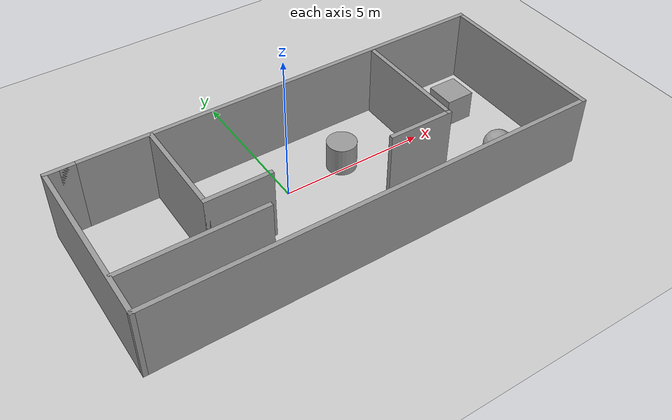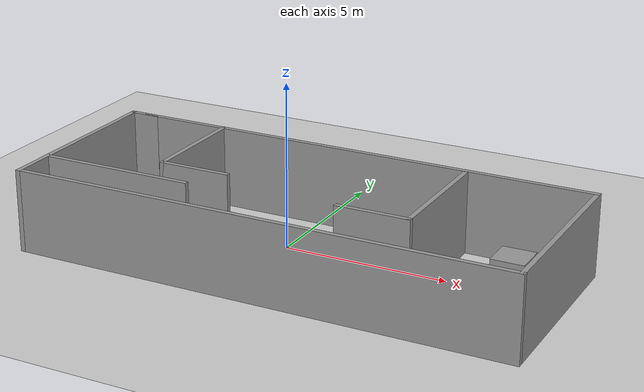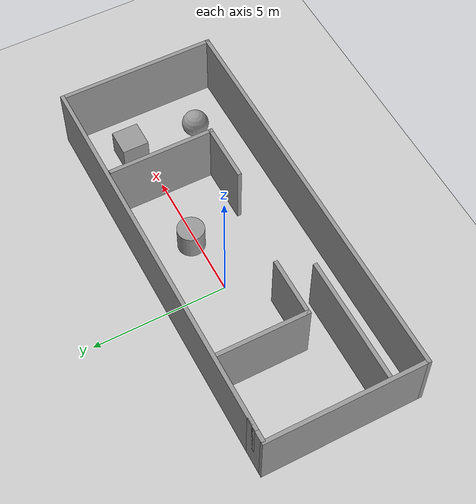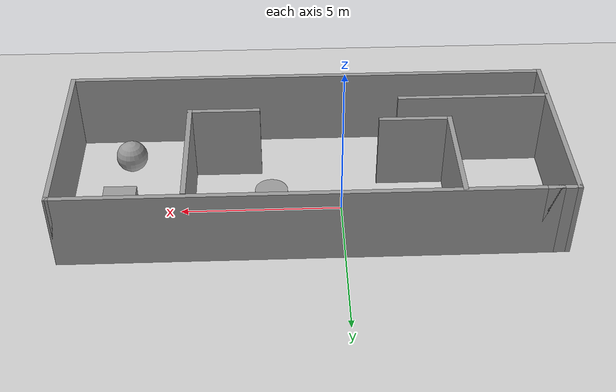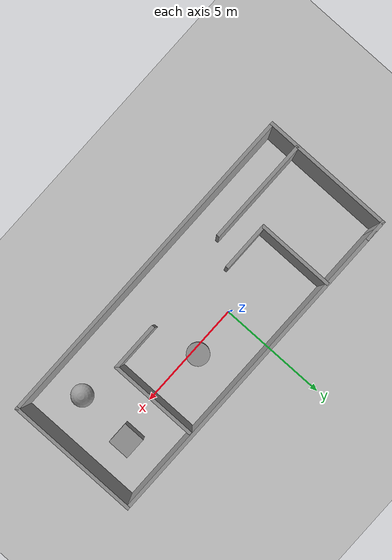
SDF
<sdf version="1.7">
 <world name="default">
  <light name="sun" type="directional">
   <pose>0 0 10 0 -0 0</pose>
   <diffuse>0.8 0.8 0.8 1</diffuse>
   <specular>0.2 0.2 0.2 1</specular>
   <attenuation>
    <range>1000</range>
    <constant>0.9</constant>
    <linear>0.01</linear>
    <quadratic>0.001</quadratic>
   </attenuation>
   <direction>-0.5 0.1 -0.9</direction>
   <spot><inner_angle>0</inner_angle><outer_angle>0</outer_angle><falloff>0</falloff></spot>
  </light>
  <model name="ground_plane">
   <static>1</static>
   <link name="link">
    <collision name="collision">
     <geometry><plane><normal>0 0 1</normal><size>100 100</size></plane></geometry>
     <surface>
      <contact><collide_bitmask>65535</collide_bitmask></contact>
      <friction><ode><mu>100</mu><mu2>50</mu2></ode></friction>
     </surface>
    </collision>
    <visual name="visual">
     <cast_shadows>0</cast_shadows>
     <geometry><plane><normal>0 0 1</normal><size>100 100</size></plane></geometry>
     <material>
      <script><uri>file://media/materials/scripts/gazebo.material</uri><name>Gazebo/Grey</name></script>
     </material>
    </visual>
   </link>
  </model>
  <gravity>0 0 -9.8</gravity>
  <magnetic_field>6e-06 2.3e-05 -4.2e-05</magnetic_field>
  <atmosphere type="adiabatic"/>
  <physics type="ode">
   <max_step_size>0.001</max_step_size>
   <real_time_factor>1</real_time_factor>
   <real_time_update_rate>1000</real_time_update_rate>
  </physics>
  <scene><ambient>0.4 0.4 0.4 1</ambient><background>0.7 0.7 0.7 1</background><shadows>1</shadows></scene>
  <audio><device>default</device></audio>
  <spherical_coordinates>
   <surface_model>EARTH_WGS84</surface_model>
   <latitude_deg>0</latitude_deg>
   <longitude_deg>0</longitude_deg>
   <elevation>0</elevation>
   <heading_deg>0</heading_deg>
  </spherical_coordinates>
  <model name="room">
   <pose>0.929309 1.99973 0 0 -0 0</pose>
   <link name="Wall_22">
    <collision name="Wall_22_Collision">
     <geometry><box><size>14.75 0.15 2.5</size></box></geometry>
     <pose>0 0 1.25 0 -0 0</pose>
    </collision>
    <visual name="Wall_22_Visual">
     <pose>0 0 1.25 0 -0 0</pose>
     <geometry><box><size>14.75 0.15 2.5</size></box></geometry>
     <material>
      <script><uri>file://media/materials/scripts/gazebo.material</uri><name>Gazebo/Grey</name></script>
      <ambient>1 1 1 1</ambient>
     </material>
     <meta><layer>0</layer></meta>
    </visual>
    <pose>0.25 0.1475 0 0 -0 0</pose>
   </link>
   <link name="Wall_23">
    <collision name="Wall_23_Collision">
     <geometry><box><size>6 0.15 2.5</size></box></geometry>
     <pose>0 0 1.25 0 -0 0</pose>
    </collision>
    <visual name="Wall_23_Visual">
     <pose>0 0 1.25 0 -0 0</pose>
     <geometry><box><size>6 0.15 2.5</size></box></geometry>
     <material>
      <script><uri>file://media/materials/scripts/gazebo.material</uri><name>Gazebo/Grey</name></script>
      <ambient>1 1 1 1</ambient>
     </material>
     <meta><layer>0</layer></meta>
    </visual>
    <pose>7.55 -2.7775 0 0 -0 -1.5708</pose>
   </link>
   <link name="Wall_24">
    <collision name="Wall_24_Collision">
     <geometry><box><size>15.25 0.15 2.5</size></box></geometry>
     <pose>0 0 1.25 0 -0 0</pose>
    </collision>
    <visual name="Wall_24_Visual">
     <pose>0 0 1.25 0 -0 0</pose>
     <geometry><box><size>15.25 0.15 2.5</size></box></geometry>
     <material>
      <script><uri>file://media/materials/scripts/gazebo.material</uri><name>Gazebo/Grey</name></script>
      <ambient>1 1 1 1</ambient>
     </material>
     <meta><layer>0</layer></meta>
    </visual>
    <pose>-0 -5.7025 0 0 -0 3.14159</pose>
   </link>
   <link name="Wall_25">
    <collision name="Wall_25_Collision">
     <geometry><box><size>6 0.15 2.5</size></box></geometry>
     <pose>0 0 1.25 0 -0 0</pose>
    </collision>
    <visual name="Wall_25_Visual">
     <pose>0 0 1.25 0 -0 0</pose>
     <geometry><box><size>6 0.15 2.5</size></box></geometry>
     <material>
      <script><uri>file://media/materials/scripts/gazebo.material</uri><name>Gazebo/Grey</name></script>
      <ambient>1 1 1 1</ambient>
     </material>
     <meta><layer>0</layer></meta>
    </visual>
    <pose>-7.55 -2.7775 0 0 -0 1.5708</pose>
   </link>
   <link name="Wall_26">
    <collision name="Wall_26_Collision">
     <geometry><box><size>1 0.15 2.5</size></box></geometry>
     <pose>0 0 1.25 0 -0 0</pose>
    </collision>
    <visual name="Wall_26_Visual">
     <pose>0 0 1.25 0 -0 0</pose>
     <geometry><box><size>1 0.15 2.5</size></box></geometry>
     <material>
      <script><uri>file://media/materials/scripts/gazebo.material</uri><name>Gazebo/Grey</name></script>
      <ambient>1 1 1 1</ambient>
     </material>
     <meta><layer>0</layer></meta>
    </visual>
    <pose>-7.125 0.1475 0 0 -0 0</pose>
   </link>
   <link name="Wall_28">
    <collision name="Wall_28_Collision">
     <geometry><box><size>3.5 0.15 2.5</size></box></geometry>
     <pose>0 0 1.25 0 -0 0</pose>
    </collision>
    <visual name="Wall_28_Visual">
     <pose>0 0 1.25 0 -0 0</pose>
     <geometry><box><size>3.5 0.15 2.5</size></box></geometry>
     <material>
      <script><uri>file://media/materials/scripts/gazebo.material</uri><name>Gazebo/Grey</name></script>
      <ambient>1 1 1 1</ambient>
     </material>
     <meta><layer>0</layer></meta>
    </visual>
    <pose>-4.29 -1.5775 0 0 -0 -1.5708</pose>
   </link>
   <link name="Wall_29">
    <collision name="Wall_29_Collision">
     <geometry><box><size>2.25 0.15 2.5</size></box></geometry>
     <pose>0 0 1.25 0 -0 0</pose>
    </collision>
    <visual name="Wall_29_Visual">
     <pose>0 0 1.25 0 -0 0</pose>
     <geometry><box><size>2.25 0.15 2.5</size></box></geometry>
     <material>
      <script><uri>file://media/materials/scripts/gazebo.material</uri><name>Gazebo/Grey</name></script>
      <ambient>1 1 1 1</ambient>
     </material>
     <meta><layer>0</layer></meta>
    </visual>
    <pose>-3.24 -3.2525 0 0 -0 0</pose>
   </link>
   <link name="Wall_31">
    <collision name="Wall_31_Collision">
     <geometry><box><size>4 0.15 2.5</size></box></geometry>
     <pose>0 0 1.25 0 -0 0</pose>
    </collision>
    <visual name="Wall_31_Visual">
     <pose>0 0 1.25 0 -0 0</pose>
     <geometry><box><size>4 0.15 2.5</size></box></geometry>
     <material>
      <script><uri>file://media/materials/scripts/gazebo.material</uri><name>Gazebo/Grey</name></script>
      <ambient>1 1 1 1</ambient>
     </material>
     <meta><layer>0</layer></meta>
    </visual>
    <pose>3.72 -1.9475 0 0 -0 -1.5708</pose>
   </link>
   <link name="Wall_32">
    <collision name="Wall_32_Collision">
     <geometry><box><size>2.25 0.15 2.5</size></box></geometry>
     <pose>0 0 1.25 0 -0 0</pose>
    </collision>
    <visual name="Wall_32_Visual">
     <pose>0 0 1.25 0 -0 0</pose>
     <geometry><box><size>2.25 0.15 2.5</size></box></geometry>
     <material>
      <script><uri>file://media/materials/scripts/gazebo.material</uri><name>Gazebo/Grey</name></script>
      <ambient>1 1 1 1</ambient>
     </material>
     <meta><layer>0</layer></meta>
    </visual>
    <pose>2.67 -3.8725 0 0 -0 3.14159</pose>
   </link>
   <link name="Wall_34">
    <collision name="Wall_34_Collision">
     <geometry><box><size>4.75 0.15 2.5</size></box></geometry>
     <pose>0 0 1.25 0 -0 0</pose>
    </collision>
    <visual name="Wall_34_Visual">
     <pose>0 0 1.25 0 -0 0</pose>
     <geometry><box><size>4.75 0.15 2.5</size></box></geometry>
     <material>
      <script><uri>file://media/materials/scripts/gazebo.material</uri><name>Gazebo/Grey</name></script>
      <ambient>1 1 1 1</ambient>
     </material>
     <meta><layer>0</layer></meta>
    </visual>
    <pose>-5.18 -4.3525 0 0 -0 0</pose>
   </link>
   <static>1</static>
  </model>
  <model name="unit_box">
   <pose>6.78625 0.387983 0.499995 0 1e-05 0</pose>
   <link name="link">
    <inertial>
     <mass>1</mass>
     <inertia>
      <ixx>0.166667</ixx>
      <ixy>0</ixy>
      <ixz>0</ixz>
      <iyy>0.166667</iyy>
      <iyz>0</iyz>
      <izz>0.166667</izz>
     </inertia>
    </inertial>
    <collision name="collision"><geometry><box><size>1 1 1</size></box></geometry></collision>
    <visual name="visual">
     <geometry><box><size>1 1 1</size></box></geometry>
     <material>
      <script><name>Gazebo/Grey</name><uri>file://media/materials/scripts/gazebo.material</uri></script>
     </material>
    </visual>
   </link>
  </model>
  <model name="unit_cylinder">
   <pose>2.16649 0.214542 0.499993 -3e-06 -4e-06 -0</pose>
   <link name="link">
    <inertial>
     <mass>1</mass>
     <inertia><ixx>0.145833</ixx><ixy>0</ixy><ixz>0</ixz><iyy>0.145833</iyy><iyz>0</iyz><izz>0.125</izz></inertia>
    </inertial>
    <collision name="collision">
     <geometry><cylinder><radius>0.5</radius><length>1</length></cylinder></geometry>
    </collision>
    <visual name="visual">
     <geometry><cylinder><radius>0.5</radius><length>1</length></cylinder></geometry>
     <material>
      <script><name>Gazebo/Grey</name><uri>file://media/materials/scripts/gazebo.material</uri></script>
     </material>
    </visual>
   </link>
  </model>
  <model name="unit_sphere">
   <pose>6.67164 -2.22409 0.5 0 -0 0</pose>
   <link name="link">
    <inertial>
     <mass>1</mass>
     <inertia><ixx>0.1</ixx><ixy>0</ixy><ixz>0</ixz><iyy>0.1</iyy><iyz>0</iyz><izz>0.1</izz></inertia>
    </inertial>
    <collision name="collision"><geometry><sphere><radius>0.5</radius></sphere></geometry></collision>
    <visual name="visual">
     <geometry><sphere><radius>0.5</radius></sphere></geometry>
     <material>
      <script><name>Gazebo/Grey</name><uri>file://media/materials/scripts/gazebo.material</uri></script>
     </material>
    </visual>
   </link>
  </model>
 </world>
</sdf>
